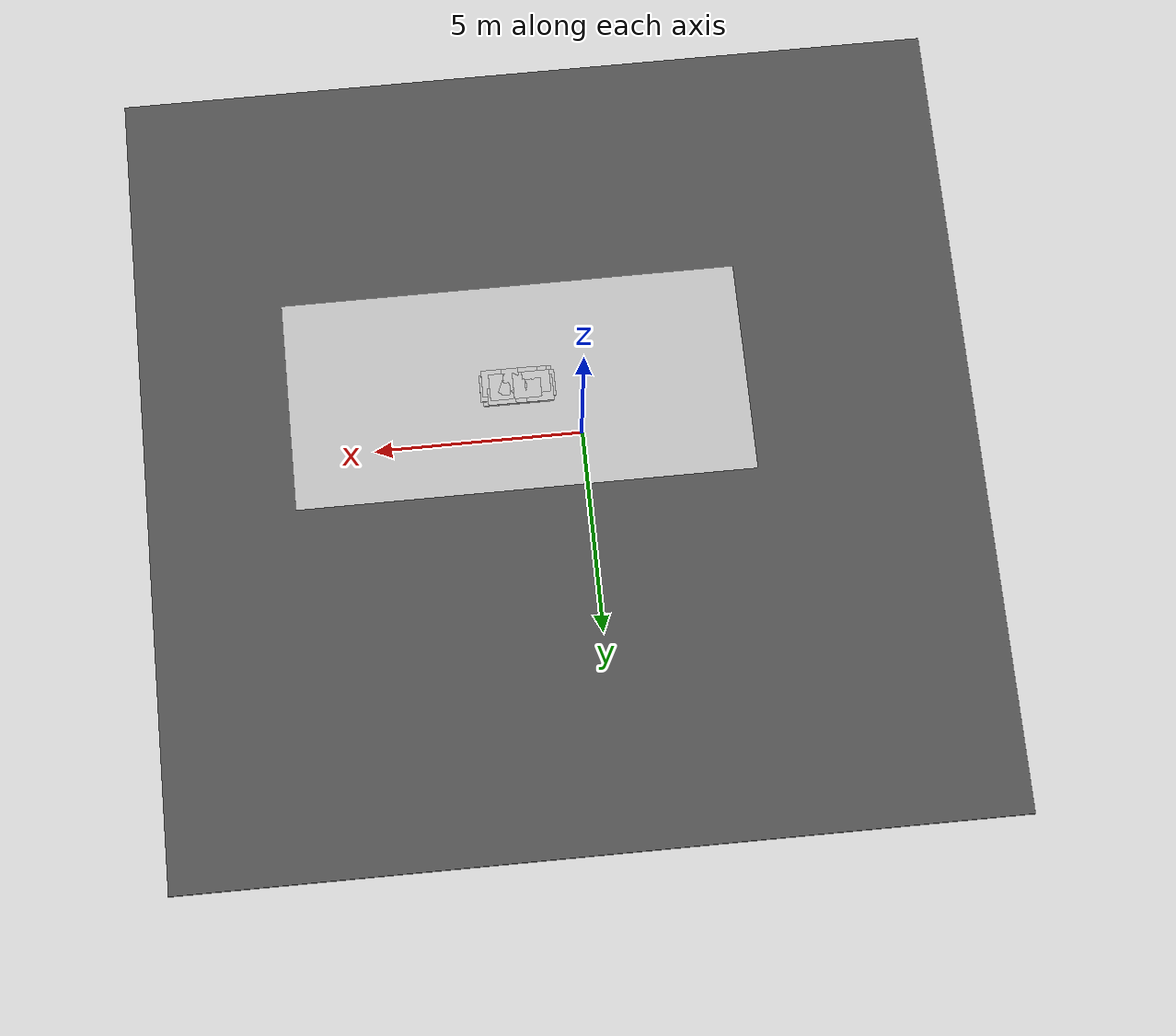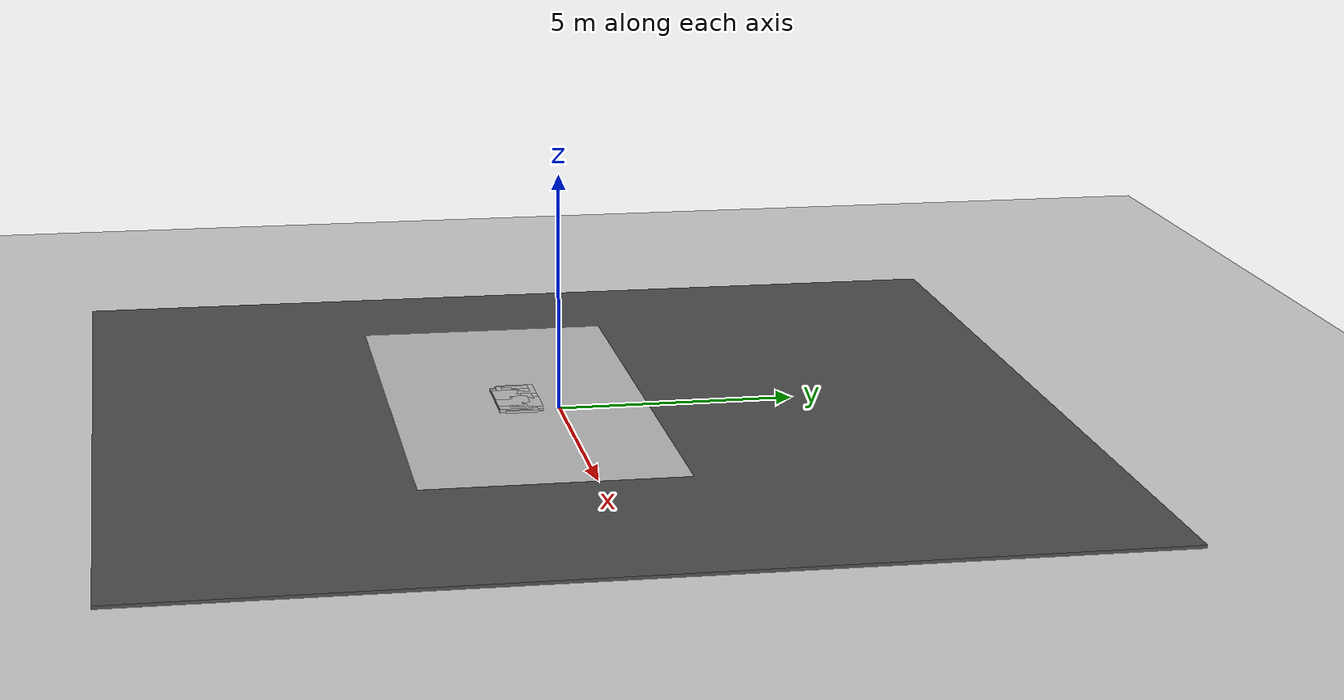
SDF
<sdf version="1.6">
 <world name="default">
  <model name="ground_plane">
   <static>1</static>
   <link name="link">
    <collision name="collision">
     <geometry><plane><normal>0 0 1</normal><size>100 100</size></plane></geometry>
     <surface><friction><ode><mu>100</mu><mu2>50</mu2></ode></friction></surface>
    </collision>
    <visual name="visual">
     <cast_shadows>0</cast_shadows>
     <geometry><plane><normal>0 0 1</normal><size>100 100</size></plane></geometry>
     <material>
      <script><uri>file://media/materials/scripts/gazebo.material</uri><name>Gazebo/Grey</name></script>
     </material>
    </visual>
   </link>
  </model>
  <model name="frc2016_roughterrain_0">
   <link name="link_clone_9">
    <pose>1.56756 -1.13992 -0.073164 0 -0 0</pose>
    <inertial>
     <inertia><ixx>nan</ixx><ixy>0</ixy><ixz>0</ixz><iyy>nan</iyy><iyz>0</iyz><izz>nan</izz></inertia>
     <mass>0</mass>
    </inertial>
    <visual name="row1_block9_md">
     <pose>-0.40005 0.1143 0.10968 0 -0 0</pose>
     <geometry><box><size>0.661913 0.666728 0.0508</size></box></geometry>
     <material><shader type="pixel"/></material>
    </visual>
    <visual name="row1_block3_md">
     <pose>0.28575 0.1143 0.10968 0 -0 0</pose>
     <geometry><box><size>0.661913 0.666728 0.0508</size></box></geometry>
     <material><shader type="pixel"/></material>
    </visual>
    <visual name="platform">
     <pose>0 0 0.08269 0 -0 0</pose>
     <geometry><box><size>10.9979 5.2227 0.003175</size></box></geometry>
     <material><shader type="pixel"/></material>
    </visual>
    <visual name="row1_block1_sm">
     <pose>0.51435 0.1143 0.09698 0 -0 0</pose>
     <geometry><box><size>0.661913 0.666728 0.0254</size></box></geometry>
     <material><shader type="pixel"/></material>
    </visual>
    <visual name="row1_block2_lg">
     <pose>0.40005 0.1143 0.12238 0 -0 0</pose>
     <geometry><box><size>0.661913 0.666728 0.0762</size></box></geometry>
     <material><shader type="pixel"/></material>
    </visual>
    <visual name="row1_block4_sm">
     <pose>0.17145 0.1143 0.09698 0 -0 0</pose>
     <geometry><box><size>0.661913 0.666728 0.0254</size></box></geometry>
     <material><shader type="pixel"/></material>
    </visual>
    <visual name="row1_block5_md">
     <pose>0.05715 0.1143 0.10968 0 -0 0</pose>
     <geometry><box><size>0.661913 0.666728 0.0508</size></box></geometry>
     <material><shader type="pixel"/></material>
    </visual>
    <visual name="row1_block6_lg">
     <pose>-0.05715 0.1143 0.12238 0 -0 0</pose>
     <geometry><box><size>0.661913 0.666728 0.0762</size></box></geometry>
     <material><shader type="pixel"/></material>
    </visual>
    <visual name="row1_block8_sm">
     <pose>-0.28575 0.1143 0.09698 0 -0 0</pose>
     <geometry><box><size>0.661913 0.666728 0.0254</size></box></geometry>
     <material><shader type="pixel"/></material>
    </visual>
    <visual name="row1_block7_sm">
     <pose>-0.17145 0.1143 0.09698 0 -0 0</pose>
     <geometry><box><size>0.661913 0.666728 0.0254</size></box></geometry>
     <material><shader type="pixel"/></material>
    </visual>
    <visual name="row1_block10_lg">
     <pose>-0.51435 0.1143 0.12238 0 -0 0</pose>
     <geometry><box><size>0.661913 0.666728 0.0762</size></box></geometry>
     <material><shader type="pixel"/></material>
    </visual>
    <visual name="row2_block1_md">
     <pose>0.5715 0 0.10968 0 -0 0</pose>
     <geometry><box><size>0.661913 0.666728 0.0508</size></box></geometry>
     <material><shader type="pixel"/></material>
    </visual>
    <visual name="row2_block2_sm">
     <pose>0.4572 0 0.09698 0 -0 0</pose>
     <geometry><box><size>0.661913 0.666728 0.0254</size></box></geometry>
     <material><shader type="pixel"/></material>
    </visual>
    <visual name="row2_block3_lg">
     <pose>0.3429 0 0.12238 0 -0 0</pose>
     <geometry><box><size>0.661913 0.666728 0.0762</size></box></geometry>
     <material><shader type="pixel"/></material>
    </visual>
    <visual name="row2_block4_md">
     <pose>0.2286 0 0.10968 0 -0 0</pose>
     <geometry><box><size>0.661913 0.666728 0.0508</size></box></geometry>
     <material><shader type="pixel"/></material>
    </visual>
    <visual name="row2_block5_lg">
     <pose>0.1143 0 0.12238 0 -0 0</pose>
     <geometry><box><size>0.661913 0.666728 0.0762</size></box></geometry>
     <material><shader type="pixel"/></material>
    </visual>
    <visual name="row2_block6_sm">
     <pose>0 0 0.09698 0 -0 0</pose>
     <geometry><box><size>0.661913 0.666728 0.0254</size></box></geometry>
     <material><shader type="pixel"/></material>
    </visual>
    <visual name="row2_block7_md">
     <pose>-0.1143 0 0.10968 0 -0 0</pose>
     <geometry><box><size>0.661913 0.666728 0.0508</size></box></geometry>
     <material><shader type="pixel"/></material>
    </visual>
    <visual name="row2_block8_lg">
     <pose>-0.2286 0 0.12238 0 -0 0</pose>
     <geometry><box><size>0.661913 0.666728 0.0762</size></box></geometry>
     <material><shader type="pixel"/></material>
    </visual>
    <visual name="row2_block9_sm">
     <pose>-0.3429 0 0.09698 0 -0 0</pose>
     <geometry><box><size>0.661913 0.666728 0.0254</size></box></geometry>
     <material><shader type="pixel"/></material>
    </visual>
    <visual name="row2_block10_lg">
     <pose>-0.4572 0 0.12238 0 -0 0</pose>
     <geometry><box><size>0.661913 0.666728 0.0762</size></box></geometry>
     <material><shader type="pixel"/></material>
    </visual>
    <visual name="row2_block11_md">
     <pose>-0.5715 0 0.10968 0 -0 0</pose>
     <geometry><box><size>0.661913 0.666728 0.0508</size></box></geometry>
     <material><shader type="pixel"/></material>
    </visual>
    <visual name="row3_block2_md">
     <pose>0.40005 -0.1143 0.10968 0 -0 0</pose>
     <geometry><box><size>0.661913 0.666728 0.0508</size></box></geometry>
     <material><shader type="pixel"/></material>
    </visual>
    <visual name="row3_block1_lg">
     <pose>0.51435 -0.1143 0.12238 0 -0 0</pose>
     <geometry><box><size>0.661913 0.666728 0.0762</size></box></geometry>
     <material><shader type="pixel"/></material>
    </visual>
    <visual name="row3_block3_lg">
     <pose>0.28575 -0.1143 0.12238 0 -0 0</pose>
     <geometry><box><size>0.661913 0.666728 0.0762</size></box></geometry>
     <material><shader type="pixel"/></material>
    </visual>
    <visual name="row3_block4_sm">
     <pose>0.17145 -0.1143 0.09698 0 -0 0</pose>
     <geometry><box><size>0.661913 0.666728 0.0254</size></box></geometry>
     <material><shader type="pixel"/></material>
    </visual>
    <visual name="row3_block5_md">
     <pose>0.05715 -0.1143 0.10968 0 -0 0</pose>
     <geometry><box><size>0.661913 0.666728 0.0508</size></box></geometry>
     <material><shader type="pixel"/></material>
    </visual>
    <visual name="row3_block6_md">
     <pose>-0.05715 -0.1143 0.10968 0 -0 0</pose>
     <geometry><box><size>0.661913 0.666728 0.0508</size></box></geometry>
     <material><shader type="pixel"/></material>
    </visual>
    <visual name="row3_block8_sm">
     <pose>-0.28575 -0.1143 0.09698 0 -0 0</pose>
     <geometry><box><size>0.661913 0.666728 0.0254</size></box></geometry>
     <material><shader type="pixel"/></material>
    </visual>
    <visual name="row3_block7_lg">
     <pose>-0.17145 -0.1143 0.12238 0 -0 0</pose>
     <geometry><box><size>0.661913 0.666728 0.0762</size></box></geometry>
     <material><shader type="pixel"/></material>
    </visual>
    <visual name="row3_block9_md">
     <pose>-0.40005 -0.1143 0.10968 0 -0 0</pose>
     <geometry><box><size>0.661913 0.666728 0.0508</size></box></geometry>
     <material><shader type="pixel"/></material>
    </visual>
    <visual name="row3_block10_sm">
     <pose>-0.51435 -0.1143 0.09698 0 -0 0</pose>
     <geometry><box><size>0.661913 0.666728 0.0254</size></box></geometry>
     <material><shader type="pixel"/></material>
    </visual>
    <collision name="row2_block5_lg_0">
     <pose>0.1143 0 0.12238 0 -0 0</pose>
     <geometry><box><size>0.661913 0.666728 0.0762</size></box></geometry>
     <surface>
      <friction>
       <ode><mu>1</mu><mu2>1</mu2><fdir1>0 0 0</fdir1><slip1>0</slip1><slip2>0</slip2></ode>
       <torsional>
        <coefficient>1</coefficient>
        <patch_radius>0</patch_radius>
        <surface_radius>0</surface_radius>
        <use_patch_radius>1</use_patch_radius>
        <ode><slip>0</slip></ode>
       </torsional>
      </friction>
      <bounce><restitution_coefficient>0</restitution_coefficient><threshold>1e+06</threshold></bounce>
      <contact>
       <collide_without_contact>0</collide_without_contact>
       <collide_without_contact_bitmask>1</collide_without_contact_bitmask>
       <collide_bitmask>1</collide_bitmask>
       <ode>
        <soft_cfm>0</soft_cfm>
        <soft_erp>0.2</soft_erp>
        <kp>1e+13</kp>
        <kd>1</kd>
        <max_vel>0.01</max_vel>
        <min_depth>0</min_depth>
       </ode>
       <bullet>
        <split_impulse>1</split_impulse>
        <split_impulse_penetration_threshold>-0.01</split_impulse_penetration_threshold>
        <soft_cfm>0</soft_cfm>
        <soft_erp>0.2</soft_erp>
        <kp>1e+13</kp>
        <kd>1</kd>
       </bullet>
      </contact>
     </surface>
    </collision>
    <collision name="platform_0">
     <pose>0 0 0.08269 0 -0 0</pose>
     <geometry><box><size>10.9979 5.2227 0.003175</size></box></geometry>
     <surface>
      <friction>
       <ode><mu>1</mu><mu2>1</mu2><fdir1>0 0 0</fdir1><slip1>0</slip1><slip2>0</slip2></ode>
       <torsional>
        <coefficient>1</coefficient>
        <patch_radius>0</patch_radius>
        <surface_radius>0</surface_radius>
        <use_patch_radius>1</use_patch_radius>
        <ode><slip>0</slip></ode>
       </torsional>
      </friction>
      <bounce><restitution_coefficient>0</restitution_coefficient><threshold>1e+06</threshold></bounce>
      <contact>
       <collide_without_contact>0</collide_without_contact>
       <collide_without_contact_bitmask>1</collide_without_contact_bitmask>
       <collide_bitmask>1</collide_bitmask>
       <ode>
        <soft_cfm>0</soft_cfm>
        <soft_erp>0.2</soft_erp>
        <kp>1e+13</kp>
        <kd>1</kd>
        <max_vel>0.01</max_vel>
        <min_depth>0</min_depth>
       </ode>
       <bullet>
        <split_impulse>1</split_impulse>
        <split_impulse_penetration_threshold>-0.01</split_impulse_penetration_threshold>
        <soft_cfm>0</soft_cfm>
        <soft_erp>0.2</soft_erp>
        <kp>1e+13</kp>
        <kd>1</kd>
       </bullet>
      </contact>
     </surface>
    </collision>
    <collision name="row1_block1_sm_0">
     <pose>0.51435 0.1143 0.09698 0 -0 0</pose>
     <geometry><box><size>0.661913 0.666728 0.0254</size></box></geometry>
     <surface>
      <friction>
       <ode><mu>1</mu><mu2>1</mu2><fdir1>0 0 0</fdir1><slip1>0</slip1><slip2>0</slip2></ode>
       <torsional>
        <coefficient>1</coefficient>
        <patch_radius>0</patch_radius>
        <surface_radius>0</surface_radius>
        <use_patch_radius>1</use_patch_radius>
        <ode><slip>0</slip></ode>
       </torsional>
      </friction>
      <bounce><restitution_coefficient>0</restitution_coefficient><threshold>1e+06</threshold></bounce>
      <contact>
       <collide_without_contact>0</collide_without_contact>
       <collide_without_contact_bitmask>1</collide_without_contact_bitmask>
       <collide_bitmask>1</collide_bitmask>
       <ode>
        <soft_cfm>0</soft_cfm>
        <soft_erp>0.2</soft_erp>
        <kp>1e+13</kp>
        <kd>1</kd>
        <max_vel>0.01</max_vel>
        <min_depth>0</min_depth>
       </ode>
       <bullet>
        <split_impulse>1</split_impulse>
        <split_impulse_penetration_threshold>-0.01</split_impulse_penetration_threshold>
        <soft_cfm>0</soft_cfm>
        <soft_erp>0.2</soft_erp>
        <kp>1e+13</kp>
        <kd>1</kd>
       </bullet>
      </contact>
     </surface>
    </collision>
    <collision name="row1_block3_md_0">
     <pose>0.28575 0.1143 0.10968 0 -0 0</pose>
     <geometry><box><size>0.661913 0.666728 0.0508</size></box></geometry>
     <surface>
      <friction>
       <ode><mu>1</mu><mu2>1</mu2><fdir1>0 0 0</fdir1><slip1>0</slip1><slip2>0</slip2></ode>
       <torsional>
        <coefficient>1</coefficient>
        <patch_radius>0</patch_radius>
        <surface_radius>0</surface_radius>
        <use_patch_radius>1</use_patch_radius>
        <ode><slip>0</slip></ode>
       </torsional>
      </friction>
      <bounce><restitution_coefficient>0</restitution_coefficient><threshold>1e+06</threshold></bounce>
      <contact>
       <collide_without_contact>0</collide_without_contact>
       <collide_without_contact_bitmask>1</collide_without_contact_bitmask>
       <collide_bitmask>1</collide_bitmask>
       <ode>
        <soft_cfm>0</soft_cfm>
        <soft_erp>0.2</soft_erp>
        <kp>1e+13</kp>
        <kd>1</kd>
        <max_vel>0.01</max_vel>
        <min_depth>0</min_depth>
       </ode>
       <bullet>
        <split_impulse>1</split_impulse>
        <split_impulse_penetration_threshold>-0.01</split_impulse_penetration_threshold>
        <soft_cfm>0</soft_cfm>
        <soft_erp>0.2</soft_erp>
        <kp>1e+13</kp>
        <kd>1</kd>
       </bullet>
      </contact>
     </surface>
    </collision>
    <collision name="row1_block4_sm_0">
     <pose>0.17145 0.1143 0.09698 0 -0 0</pose>
     <geometry><box><size>0.661913 0.666728 0.0254</size></box></geometry>
     <surface>
      <friction>
       <ode><mu>1</mu><mu2>1</mu2><fdir1>0 0 0</fdir1><slip1>0</slip1><slip2>0</slip2></ode>
       <torsional>
        <coefficient>1</coefficient>
        <patch_radius>0</patch_radius>
        <surface_radius>0</surface_radius>
        <use_patch_radius>1</use_patch_radius>
        <ode><slip>0</slip></ode>
       </torsional>
      </friction>
      <bounce><restitution_coefficient>0</restitution_coefficient><threshold>1e+06</threshold></bounce>
      <contact>
       <collide_without_contact>0</collide_without_contact>
       <collide_without_contact_bitmask>1</collide_without_contact_bitmask>
       <collide_bitmask>1</collide_bitmask>
       <ode>
        <soft_cfm>0</soft_cfm>
        <soft_erp>0.2</soft_erp>
        <kp>1e+13</kp>
        <kd>1</kd>
        <max_vel>0.01</max_vel>
        <min_depth>0</min_depth>
       </ode>
       <bullet>
        <split_impulse>1</split_impulse>
        <split_impulse_penetration_threshold>-0.01</split_impulse_penetration_threshold>
        <soft_cfm>0</soft_cfm>
        <soft_erp>0.2</soft_erp>
        <kp>1e+13</kp>
        <kd>1</kd>
       </bullet>
      </contact>
     </surface>
    </collision>
    <collision name="row1_block2_lg_0">
     <pose>0.40005 0.1143 0.12238 0 -0 0</pose>
     <geometry><box><size>0.661913 0.666728 0.0762</size></box></geometry>
     <surface>
      <friction>
       <ode><mu>1</mu><mu2>1</mu2><fdir1>0 0 0</fdir1><slip1>0</slip1><slip2>0</slip2></ode>
       <torsional>
        <coefficient>1</coefficient>
        <patch_radius>0</patch_radius>
        <surface_radius>0</surface_radius>
        <use_patch_radius>1</use_patch_radius>
        <ode><slip>0</slip></ode>
       </torsional>
      </friction>
      <bounce><restitution_coefficient>0</restitution_coefficient><threshold>1e+06</threshold></bounce>
      <contact>
       <collide_without_contact>0</collide_without_contact>
       <collide_without_contact_bitmask>1</collide_without_contact_bitmask>
       <collide_bitmask>1</collide_bitmask>
       <ode>
        <soft_cfm>0</soft_cfm>
        <soft_erp>0.2</soft_erp>
        <kp>1e+13</kp>
        <kd>1</kd>
        <max_vel>0.01</max_vel>
        <min_depth>0</min_depth>
       </ode>
       <bullet>
        <split_impulse>1</split_impulse>
        <split_impulse_penetration_threshold>-0.01</split_impulse_penetration_threshold>
        <soft_cfm>0</soft_cfm>
        <soft_erp>0.2</soft_erp>
        <kp>1e+13</kp>
        <kd>1</kd>
       </bullet>
      </contact>
     </surface>
    </collision>
    <collision name="row1_block5_md_0">
     <pose>0.05715 0.1143 0.10968 0 -0 0</pose>
     <geometry><box><size>0.661913 0.666728 0.0508</size></box></geometry>
     <surface>
      <friction>
       <ode><mu>1</mu><mu2>1</mu2><fdir1>0 0 0</fdir1><slip1>0</slip1><slip2>0</slip2></ode>
       <torsional>
        <coefficient>1</coefficient>
        <patch_radius>0</patch_radius>
        <surface_radius>0</surface_radius>
        <use_patch_radius>1</use_patch_radius>
        <ode><slip>0</slip></ode>
       </torsional>
      </friction>
      <bounce><restitution_coefficient>0</restitution_coefficient><threshold>1e+06</threshold></bounce>
      <contact>
       <collide_without_contact>0</collide_without_contact>
       <collide_without_contact_bitmask>1</collide_without_contact_bitmask>
       <collide_bitmask>1</collide_bitmask>
       <ode>
        <soft_cfm>0</soft_cfm>
        <soft_erp>0.2</soft_erp>
        <kp>1e+13</kp>
        <kd>1</kd>
        <max_vel>0.01</max_vel>
        <min_depth>0</min_depth>
       </ode>
       <bullet>
        <split_impulse>1</split_impulse>
        <split_impulse_penetration_threshold>-0.01</split_impulse_penetration_threshold>
        <soft_cfm>0</soft_cfm>
        <soft_erp>0.2</soft_erp>
        <kp>1e+13</kp>
        <kd>1</kd>
       </bullet>
      </contact>
     </surface>
    </collision>
    <collision name="row1_block6_lg_0">
     <pose>-0.05715 0.1143 0.12238 0 -0 0</pose>
     <geometry><box><size>0.661913 0.666728 0.0762</size></box></geometry>
     <surface>
      <friction>
       <ode><mu>1</mu><mu2>1</mu2><fdir1>0 0 0</fdir1><slip1>0</slip1><slip2>0</slip2></ode>
       <torsional>
        <coefficient>1</coefficient>
        <patch_radius>0</patch_radius>
        <surface_radius>0</surface_radius>
        <use_patch_radius>1</use_patch_radius>
        <ode><slip>0</slip></ode>
       </torsional>
      </friction>
      <bounce><restitution_coefficient>0</restitution_coefficient><threshold>1e+06</threshold></bounce>
      <contact>
       <collide_without_contact>0</collide_without_contact>
       <collide_without_contact_bitmask>1</collide_without_contact_bitmask>
       <collide_bitmask>1</collide_bitmask>
       <ode>
        <soft_cfm>0</soft_cfm>
        <soft_erp>0.2</soft_erp>
        <kp>1e+13</kp>
        <kd>1</kd>
        <max_vel>0.01</max_vel>
        <min_depth>0</min_depth>
       </ode>
       <bullet>
        <split_impulse>1</split_impulse>
        <split_impulse_penetration_threshold>-0.01</split_impulse_penetration_threshold>
        <soft_cfm>0</soft_cfm>
        <soft_erp>0.2</soft_erp>
        <kp>1e+13</kp>
        <kd>1</kd>
       </bullet>
      </contact>
     </surface>
    </collision>
    <collision name="row1_block7_sm_0">
     <pose>-0.17145 0.1143 0.09698 0 -0 0</pose>
     <geometry><box><size>0.661913 0.666728 0.0254</size></box></geometry>
     <surface>
      <friction>
       <ode><mu>1</mu><mu2>1</mu2><fdir1>0 0 0</fdir1><slip1>0</slip1><slip2>0</slip2></ode>
       <torsional>
        <coefficient>1</coefficient>
        <patch_radius>0</patch_radius>
        <surface_radius>0</surface_radius>
        <use_patch_radius>1</use_patch_radius>
        <ode><slip>0</slip></ode>
       </torsional>
      </friction>
      <bounce><restitution_coefficient>0</restitution_coefficient><threshold>1e+06</threshold></bounce>
      <contact>
       <collide_without_contact>0</collide_without_contact>
       <collide_without_contact_bitmask>1</collide_without_contact_bitmask>
       <collide_bitmask>1</collide_bitmask>
       <ode>
        <soft_cfm>0</soft_cfm>
        <soft_erp>0.2</soft_erp>
        <kp>1e+13</kp>
        <kd>1</kd>
        <max_vel>0.01</max_vel>
        <min_depth>0</min_depth>
       </ode>
       <bullet>
        <split_impulse>1</split_impulse>
        <split_impulse_penetration_threshold>-0.01</split_impulse_penetration_threshold>
        <soft_cfm>0</soft_cfm>
        <soft_erp>0.2</soft_erp>
        <kp>1e+13</kp>
        <kd>1</kd>
       </bullet>
      </contact>
     </surface>
    </collision>
    <collision name="row1_block8_sm_0">
     <pose>-0.28575 0.1143 0.09698 0 -0 0</pose>
     <geometry><box><size>0.661913 0.666728 0.0254</size></box></geometry>
     <surface>
      <friction>
       <ode><mu>1</mu><mu2>1</mu2><fdir1>0 0 0</fdir1><slip1>0</slip1><slip2>0</slip2></ode>
       <torsional>
        <coefficient>1</coefficient>
        <patch_radius>0</patch_radius>
        <surface_radius>0</surface_radius>
        <use_patch_radius>1</use_patch_radius>
        <ode><slip>0</slip></ode>
       </torsional>
      </friction>
      <bounce><restitution_coefficient>0</restitution_coefficient><threshold>1e+06</threshold></bounce>
      <contact>
       <collide_without_contact>0</collide_without_contact>
       <collide_without_contact_bitmask>1</collide_without_contact_bitmask>
       <collide_bitmask>1</collide_bitmask>
       <ode>
        <soft_cfm>0</soft_cfm>
        <soft_erp>0.2</soft_erp>
        <kp>1e+13</kp>
        <kd>1</kd>
        <max_vel>0.01</max_vel>
        <min_depth>0</min_depth>
       </ode>
       <bullet>
        <split_impulse>1</split_impulse>
        <split_impulse_penetration_threshold>-0.01</split_impulse_penetration_threshold>
        <soft_cfm>0</soft_cfm>
        <soft_erp>0.2</soft_erp>
        <kp>1e+13</kp>
        <kd>1</kd>
       </bullet>
      </contact>
     </surface>
    </collision>
    <collision name="row1_block10_lg_0">
     <pose>-0.51435 0.1143 0.12238 0 -0 0</pose>
     <geometry><box><size>0.661913 0.666728 0.0762</size></box></geometry>
     <surface>
      <friction>
       <ode><mu>1</mu><mu2>1</mu2><fdir1>0 0 0</fdir1><slip1>0</slip1><slip2>0</slip2></ode>
       <torsional>
        <coefficient>1</coefficient>
        <patch_radius>0</patch_radius>
        <surface_radius>0</surface_radius>
        <use_patch_radius>1</use_patch_radius>
        <ode><slip>0</slip></ode>
       </torsional>
      </friction>
      <bounce><restitution_coefficient>0</restitution_coefficient><threshold>1e+06</threshold></bounce>
      <contact>
       <collide_without_contact>0</collide_without_contact>
       <collide_without_contact_bitmask>1</collide_without_contact_bitmask>
       <collide_bitmask>1</collide_bitmask>
       <ode>
        <soft_cfm>0</soft_cfm>
        <soft_erp>0.2</soft_erp>
        <kp>1e+13</kp>
        <kd>1</kd>
        <max_vel>0.01</max_vel>
        <min_depth>0</min_depth>
       </ode>
       <bullet>
        <split_impulse>1</split_impulse>
        <split_impulse_penetration_threshold>-0.01</split_impulse_penetration_threshold>
        <soft_cfm>0</soft_cfm>
        <soft_erp>0.2</soft_erp>
        <kp>1e+13</kp>
        <kd>1</kd>
       </bullet>
      </contact>
     </surface>
    </collision>
    <collision name="row1_block9_md_0">
     <pose>-0.40005 0.1143 0.10968 0 -0 0</pose>
     <geometry><box><size>0.661913 0.666728 0.0508</size></box></geometry>
     <surface>
      <friction>
       <ode><mu>1</mu><mu2>1</mu2><fdir1>0 0 0</fdir1><slip1>0</slip1><slip2>0</slip2></ode>
       <torsional>
        <coefficient>1</coefficient>
        <patch_radius>0</patch_radius>
        <surface_radius>0</surface_radius>
        <use_patch_radius>1</use_patch_radius>
        <ode><slip>0</slip></ode>
       </torsional>
      </friction>
      <bounce><restitution_coefficient>0</restitution_coefficient><threshold>1e+06</threshold></bounce>
      <contact>
       <collide_without_contact>0</collide_without_contact>
       <collide_without_contact_bitmask>1</collide_without_contact_bitmask>
       <collide_bitmask>1</collide_bitmask>
       <ode>
        <soft_cfm>0</soft_cfm>
        <soft_erp>0.2</soft_erp>
        <kp>1e+13</kp>
        <kd>1</kd>
        <max_vel>0.01</max_vel>
        <min_depth>0</min_depth>
       </ode>
       <bullet>
        <split_impulse>1</split_impulse>
        <split_impulse_penetration_threshold>-0.01</split_impulse_penetration_threshold>
        <soft_cfm>0</soft_cfm>
        <soft_erp>0.2</soft_erp>
        <kp>1e+13</kp>
        <kd>1</kd>
       </bullet>
      </contact>
     </surface>
    </collision>
    <collision name="row2_block1_md_0">
     <pose>0.5715 0 0.10968 0 -0 0</pose>
     <geometry><box><size>0.661913 0.666728 0.0508</size></box></geometry>
     <surface>
      <friction>
       <ode><mu>1</mu><mu2>1</mu2><fdir1>0 0 0</fdir1><slip1>0</slip1><slip2>0</slip2></ode>
       <torsional>
        <coefficient>1</coefficient>
        <patch_radius>0</patch_radius>
        <surface_radius>0</surface_radius>
        <use_patch_radius>1</use_patch_radius>
        <ode><slip>0</slip></ode>
       </torsional>
      </friction>
      <bounce><restitution_coefficient>0</restitution_coefficient><threshold>1e+06</threshold></bounce>
      <contact>
       <collide_without_contact>0</collide_without_contact>
       <collide_without_contact_bitmask>1</collide_without_contact_bitmask>
       <collide_bitmask>1</collide_bitmask>
       <ode>
        <soft_cfm>0</soft_cfm>
        <soft_erp>0.2</soft_erp>
        <kp>1e+13</kp>
        <kd>1</kd>
        <max_vel>0.01</max_vel>
        <min_depth>0</min_depth>
       </ode>
       <bullet>
        <split_impulse>1</split_impulse>
        <split_impulse_penetration_threshold>-0.01</split_impulse_penetration_threshold>
        <soft_cfm>0</soft_cfm>
        <soft_erp>0.2</soft_erp>
        <kp>1e+13</kp>
        <kd>1</kd>
       </bullet>
      </contact>
     </surface>
    </collision>
    <collision name="row2_block2_sm_0">
     <pose>0.4572 0 0.09698 0 -0 0</pose>
     <geometry><box><size>0.661913 0.666728 0.0254</size></box></geometry>
     <surface>
      <friction>
       <ode><mu>1</mu><mu2>1</mu2><fdir1>0 0 0</fdir1><slip1>0</slip1><slip2>0</slip2></ode>
       <torsional>
        <coefficient>1</coefficient>
        <patch_radius>0</patch_radius>
        <surface_radius>0</surface_radius>
        <use_patch_radius>1</use_patch_radius>
        <ode><slip>0</slip></ode>
       </torsional>
      </friction>
      <bounce><restitution_coefficient>0</restitution_coefficient><threshold>1e+06</threshold></bounce>
      <contact>
       <collide_without_contact>0</collide_without_contact>
       <collide_without_contact_bitmask>1</collide_without_contact_bitmask>
       <collide_bitmask>1</collide_bitmask>
       <ode>
        <soft_cfm>0</soft_cfm>
        <soft_erp>0.2</soft_erp>
        <kp>1e+13</kp>
        <kd>1</kd>
        <max_vel>0.01</max_vel>
        <min_depth>0</min_depth>
       </ode>
       <bullet>
        <split_impulse>1</split_impulse>
        <split_impulse_penetration_threshold>-0.01</split_impulse_penetration_threshold>
        <soft_cfm>0</soft_cfm>
        <soft_erp>0.2</soft_erp>
        <kp>1e+13</kp>
        <kd>1</kd>
       </bullet>
      </contact>
     </surface>
    </collision>
    <collision name="row2_block4_md_0">
     <pose>0.2286 0 0.10968 0 -0 0</pose>
     <geometry><box><size>0.661913 0.666728 0.0508</size></box></geometry>
     <surface>
      <friction>
       <ode><mu>1</mu><mu2>1</mu2><fdir1>0 0 0</fdir1><slip1>0</slip1><slip2>0</slip2></ode>
       <torsional>
        <coefficient>1</coefficient>
        <patch_radius>0</patch_radius>
        <surface_radius>0</surface_radius>
        <use_patch_radius>1</use_patch_radius>
        <ode><slip>0</slip></ode>
       </torsional>
      </friction>
      <bounce><restitution_coefficient>0</restitution_coefficient><threshold>1e+06</threshold></bounce>
      <contact>
       <collide_without_contact>0</collide_without_contact>
       <collide_without_contact_bitmask>1</collide_without_contact_bitmask>
       <collide_bitmask>1</collide_bitmask>
       <ode>
        <soft_cfm>0</soft_cfm>
        <soft_erp>0.2</soft_erp>
        <kp>1e+13</kp>
        <kd>1</kd>
        <max_vel>0.01</max_vel>
        <min_depth>0</min_depth>
       </ode>
       <bullet>
        <split_impulse>1</split_impulse>
        <split_impulse_penetration_threshold>-0.01</split_impulse_penetration_threshold>
        <soft_cfm>0</soft_cfm>
        <soft_erp>0.2</soft_erp>
        <kp>1e+13</kp>
        <kd>1</kd>
       </bullet>
      </contact>
     </surface>
    </collision>
    <collision name="row2_block3_lg_0">
     <pose>0.3429 0 0.12238 0 -0 0</pose>
     <geometry><box><size>0.661913 0.666728 0.0762</size></box></geometry>
     <surface>
      <friction>
       <ode><mu>1</mu><mu2>1</mu2><fdir1>0 0 0</fdir1><slip1>0</slip1><slip2>0</slip2></ode>
       <torsional>
        <coefficient>1</coefficient>
        <patch_radius>0</patch_radius>
        <surface_radius>0</surface_radius>
        <use_patch_radius>1</use_patch_radius>
        <ode><slip>0</slip></ode>
       </torsional>
      </friction>
      <bounce><restitution_coefficient>0</restitution_coefficient><threshold>1e+06</threshold></bounce>
      <contact>
       <collide_without_contact>0</collide_without_contact>
       <collide_without_contact_bitmask>1</collide_without_contact_bitmask>
       <collide_bitmask>1</collide_bitmask>
       <ode>
        <soft_cfm>0</soft_cfm>
        <soft_erp>0.2</soft_erp>
        <kp>1e+13</kp>
        <kd>1</kd>
        <max_vel>0.01</max_vel>
        <min_depth>0</min_depth>
       </ode>
       <bullet>
        <split_impulse>1</split_impulse>
        <split_impulse_penetration_threshold>-0.01</split_impulse_penetration_threshold>
        <soft_cfm>0</soft_cfm>
        <soft_erp>0.2</soft_erp>
        <kp>1e+13</kp>
        <kd>1</kd>
       </bullet>
      </contact>
     </surface>
    </collision>
    <collision name="row2_block6_sm_0">
     <pose>0 0 0.09698 0 -0 0</pose>
     <geometry><box><size>0.661913 0.666728 0.0254</size></box></geometry>
     <surface>
      <friction>
       <ode><mu>1</mu><mu2>1</mu2><fdir1>0 0 0</fdir1><slip1>0</slip1><slip2>0</slip2></ode>
       <torsional>
        <coefficient>1</coefficient>
        <patch_radius>0</patch_radius>
        <surface_radius>0</surface_radius>
        <use_patch_radius>1</use_patch_radius>
        <ode><slip>0</slip></ode>
       </torsional>
      </friction>
      <bounce><restitution_coefficient>0</restitution_coefficient><threshold>1e+06</threshold></bounce>
      <contact>
       <collide_without_contact>0</collide_without_contact>
       <collide_without_contact_bitmask>1</collide_without_contact_bitmask>
       <collide_bitmask>1</collide_bitmask>
       <ode>
        <soft_cfm>0</soft_cfm>
        <soft_erp>0.2</soft_erp>
        <kp>1e+13</kp>
        <kd>1</kd>
        <max_vel>0.01</max_vel>
        <min_depth>0</min_depth>
       </ode>
       <bullet>
        <split_impulse>1</split_impulse>
        <split_impulse_penetration_threshold>-0.01</split_impulse_penetration_threshold>
        <soft_cfm>0</soft_cfm>
        <soft_erp>0.2</soft_erp>
        <kp>1e+13</kp>
        <kd>1</kd>
       </bullet>
      </contact>
     </surface>
    </collision>
    <collision name="row2_block10_lg_0">
     <pose>-0.4572 0 0.12238 0 -0 0</pose>
     <geometry><box><size>0.661913 0.666728 0.0762</size></box></geometry>
     <surface>
      <friction>
       <ode><mu>1</mu><mu2>1</mu2><fdir1>0 0 0</fdir1><slip1>0</slip1><slip2>0</slip2></ode>
       <torsional>
        <coefficient>1</coefficient>
        <patch_radius>0</patch_radius>
        <surface_radius>0</surface_radius>
        <use_patch_radius>1</use_patch_radius>
        <ode><slip>0</slip></ode>
       </torsional>
      </friction>
      <bounce><restitution_coefficient>0</restitution_coefficient><threshold>1e+06</threshold></bounce>
      <contact>
       <collide_without_contact>0</collide_without_contact>
       <collide_without_contact_bitmask>1</collide_without_contact_bitmask>
       <collide_bitmask>1</collide_bitmask>
       <ode>
        <soft_cfm>0</soft_cfm>
        <soft_erp>0.2</soft_erp>
        <kp>1e+13</kp>
        <kd>1</kd>
        <max_vel>0.01</max_vel>
        <min_depth>0</min_depth>
       </ode>
       <bullet>
        <split_impulse>1</split_impulse>
        <split_impulse_penetration_threshold>-0.01</split_impulse_penetration_threshold>
        <soft_cfm>0</soft_cfm>
        <soft_erp>0.2</soft_erp>
        <kp>1e+13</kp>
        <kd>1</kd>
       </bullet>
      </contact>
     </surface>
    </collision>
    <collision name="row2_block7_md_0">
     <pose>-0.1143 0 0.10968 0 -0 0</pose>
     <geometry><box><size>0.661913 0.666728 0.0508</size></box></geometry>
     <surface>
      <friction>
       <ode><mu>1</mu><mu2>1</mu2><fdir1>0 0 0</fdir1><slip1>0</slip1><slip2>0</slip2></ode>
       <torsional>
        <coefficient>1</coefficient>
        <patch_radius>0</patch_radius>
        <surface_radius>0</surface_radius>
        <use_patch_radius>1</use_patch_radius>
        <ode><slip>0</slip></ode>
       </torsional>
      </friction>
      <bounce><restitution_coefficient>0</restitution_coefficient><threshold>1e+06</threshold></bounce>
      <contact>
       <collide_without_contact>0</collide_without_contact>
       <collide_without_contact_bitmask>1</collide_without_contact_bitmask>
       <collide_bitmask>1</collide_bitmask>
       <ode>
        <soft_cfm>0</soft_cfm>
        <soft_erp>0.2</soft_erp>
        <kp>1e+13</kp>
        <kd>1</kd>
        <max_vel>0.01</max_vel>
        <min_depth>0</min_depth>
       </ode>
       <bullet>
        <split_impulse>1</split_impulse>
        <split_impulse_penetration_threshold>-0.01</split_impulse_penetration_threshold>
        <soft_cfm>0</soft_cfm>
        <soft_erp>0.2</soft_erp>
        <kp>1e+13</kp>
        <kd>1</kd>
       </bullet>
      </contact>
     </surface>
    </collision>
    <collision name="row2_block8_lg_0">
     <pose>-0.2286 0 0.12238 0 -0 0</pose>
     <geometry><box><size>0.661913 0.666728 0.0762</size></box></geometry>
     <surface>
      <friction>
       <ode><mu>1</mu><mu2>1</mu2><fdir1>0 0 0</fdir1><slip1>0</slip1><slip2>0</slip2></ode>
       <torsional>
        <coefficient>1</coefficient>
        <patch_radius>0</patch_radius>
        <surface_radius>0</surface_radius>
        <use_patch_radius>1</use_patch_radius>
        <ode><slip>0</slip></ode>
       </torsional>
      </friction>
      <bounce><restitution_coefficient>0</restitution_coefficient><threshold>1e+06</threshold></bounce>
      <contact>
       <collide_without_contact>0</collide_without_contact>
       <collide_without_contact_bitmask>1</collide_without_contact_bitmask>
       <collide_bitmask>1</collide_bitmask>
       <ode>
        <soft_cfm>0</soft_cfm>
        <soft_erp>0.2</soft_erp>
        <kp>1e+13</kp>
        <kd>1</kd>
        <max_vel>0.01</max_vel>
        <min_depth>0</min_depth>
       </ode>
       <bullet>
        <split_impulse>1</split_impulse>
        <split_impulse_penetration_threshold>-0.01</split_impulse_penetration_threshold>
        <soft_cfm>0</soft_cfm>
        <soft_erp>0.2</soft_erp>
        <kp>1e+13</kp>
        <kd>1</kd>
       </bullet>
      </contact>
     </surface>
    </collision>
    <collision name="row2_block11_md_0">
     <pose>-0.5715 0 0.10968 0 -0 0</pose>
     <geometry><box><size>0.661913 0.666728 0.0508</size></box></geometry>
     <surface>
      <friction>
       <ode><mu>1</mu><mu2>1</mu2><fdir1>0 0 0</fdir1><slip1>0</slip1><slip2>0</slip2></ode>
       <torsional>
        <coefficient>1</coefficient>
        <patch_radius>0</patch_radius>
        <surface_radius>0</surface_radius>
        <use_patch_radius>1</use_patch_radius>
        <ode><slip>0</slip></ode>
       </torsional>
      </friction>
      <bounce><restitution_coefficient>0</restitution_coefficient><threshold>1e+06</threshold></bounce>
      <contact>
       <collide_without_contact>0</collide_without_contact>
       <collide_without_contact_bitmask>1</collide_without_contact_bitmask>
       <collide_bitmask>1</collide_bitmask>
       <ode>
        <soft_cfm>0</soft_cfm>
        <soft_erp>0.2</soft_erp>
        <kp>1e+13</kp>
        <kd>1</kd>
        <max_vel>0.01</max_vel>
        <min_depth>0</min_depth>
       </ode>
       <bullet>
        <split_impulse>1</split_impulse>
        <split_impulse_penetration_threshold>-0.01</split_impulse_penetration_threshold>
        <soft_cfm>0</soft_cfm>
        <soft_erp>0.2</soft_erp>
        <kp>1e+13</kp>
        <kd>1</kd>
       </bullet>
      </contact>
     </surface>
    </collision>
    <collision name="row2_block9_sm_0">
     <pose>-0.3429 0 0.09698 0 -0 0</pose>
     <geometry><box><size>0.661913 0.666728 0.0254</size></box></geometry>
     <surface>
      <friction>
       <ode><mu>1</mu><mu2>1</mu2><fdir1>0 0 0</fdir1><slip1>0</slip1><slip2>0</slip2></ode>
       <torsional>
        <coefficient>1</coefficient>
        <patch_radius>0</patch_radius>
        <surface_radius>0</surface_radius>
        <use_patch_radius>1</use_patch_radius>
        <ode><slip>0</slip></ode>
       </torsional>
      </friction>
      <bounce><restitution_coefficient>0</restitution_coefficient><threshold>1e+06</threshold></bounce>
      <contact>
       <collide_without_contact>0</collide_without_contact>
       <collide_without_contact_bitmask>1</collide_without_contact_bitmask>
       <collide_bitmask>1</collide_bitmask>
       <ode>
        <soft_cfm>0</soft_cfm>
        <soft_erp>0.2</soft_erp>
        <kp>1e+13</kp>
        <kd>1</kd>
        <max_vel>0.01</max_vel>
        <min_depth>0</min_depth>
       </ode>
       <bullet>
        <split_impulse>1</split_impulse>
        <split_impulse_penetration_threshold>-0.01</split_impulse_penetration_threshold>
        <soft_cfm>0</soft_cfm>
        <soft_erp>0.2</soft_erp>
        <kp>1e+13</kp>
        <kd>1</kd>
       </bullet>
      </contact>
     </surface>
    </collision>
    <collision name="row3_block2_md_0">
     <pose>0.40005 -0.1143 0.10968 0 -0 0</pose>
     <geometry><box><size>0.661913 0.666728 0.0508</size></box></geometry>
     <surface>
      <friction>
       <ode><mu>1</mu><mu2>1</mu2><fdir1>0 0 0</fdir1><slip1>0</slip1><slip2>0</slip2></ode>
       <torsional>
        <coefficient>1</coefficient>
        <patch_radius>0</patch_radius>
        <surface_radius>0</surface_radius>
        <use_patch_radius>1</use_patch_radius>
        <ode><slip>0</slip></ode>
       </torsional>
      </friction>
      <bounce><restitution_coefficient>0</restitution_coefficient><threshold>1e+06</threshold></bounce>
      <contact>
       <collide_without_contact>0</collide_without_contact>
       <collide_without_contact_bitmask>1</collide_without_contact_bitmask>
       <collide_bitmask>1</collide_bitmask>
       <ode>
        <soft_cfm>0</soft_cfm>
        <soft_erp>0.2</soft_erp>
        <kp>1e+13</kp>
        <kd>1</kd>
        <max_vel>0.01</max_vel>
        <min_depth>0</min_depth>
       </ode>
       <bullet>
        <split_impulse>1</split_impulse>
        <split_impulse_penetration_threshold>-0.01</split_impulse_penetration_threshold>
        <soft_cfm>0</soft_cfm>
        <soft_erp>0.2</soft_erp>
        <kp>1e+13</kp>
        <kd>1</kd>
       </bullet>
      </contact>
     </surface>
    </collision>
    <collision name="row3_block3_lg_0">
     <pose>0.28575 -0.1143 0.12238 0 -0 0</pose>
     <geometry><box><size>0.661913 0.666728 0.0762</size></box></geometry>
     <surface>
      <friction>
       <ode><mu>1</mu><mu2>1</mu2><fdir1>0 0 0</fdir1><slip1>0</slip1><slip2>0</slip2></ode>
       <torsional>
        <coefficient>1</coefficient>
        <patch_radius>0</patch_radius>
        <surface_radius>0</surface_radius>
        <use_patch_radius>1</use_patch_radius>
        <ode><slip>0</slip></ode>
       </torsional>
      </friction>
      <bounce><restitution_coefficient>0</restitution_coefficient><threshold>1e+06</threshold></bounce>
      <contact>
       <collide_without_contact>0</collide_without_contact>
       <collide_without_contact_bitmask>1</collide_without_contact_bitmask>
       <collide_bitmask>1</collide_bitmask>
       <ode>
        <soft_cfm>0</soft_cfm>
        <soft_erp>0.2</soft_erp>
        <kp>1e+13</kp>
        <kd>1</kd>
        <max_vel>0.01</max_vel>
        <min_depth>0</min_depth>
       </ode>
       <bullet>
        <split_impulse>1</split_impulse>
        <split_impulse_penetration_threshold>-0.01</split_impulse_penetration_threshold>
        <soft_cfm>0</soft_cfm>
        <soft_erp>0.2</soft_erp>
        <kp>1e+13</kp>
        <kd>1</kd>
       </bullet>
      </contact>
     </surface>
    </collision>
    <collision name="row3_block1_lg_0">
     <pose>0.51435 -0.1143 0.12238 0 -0 0</pose>
     <geometry><box><size>0.661913 0.666728 0.0762</size></box></geometry>
     <surface>
      <friction>
       <ode><mu>1</mu><mu2>1</mu2><fdir1>0 0 0</fdir1><slip1>0</slip1><slip2>0</slip2></ode>
       <torsional>
        <coefficient>1</coefficient>
        <patch_radius>0</patch_radius>
        <surface_radius>0</surface_radius>
        <use_patch_radius>1</use_patch_radius>
        <ode><slip>0</slip></ode>
       </torsional>
      </friction>
      <bounce><restitution_coefficient>0</restitution_coefficient><threshold>1e+06</threshold></bounce>
      <contact>
       <collide_without_contact>0</collide_without_contact>
       <collide_without_contact_bitmask>1</collide_without_contact_bitmask>
       <collide_bitmask>1</collide_bitmask>
       <ode>
        <soft_cfm>0</soft_cfm>
        <soft_erp>0.2</soft_erp>
        <kp>1e+13</kp>
        <kd>1</kd>
        <max_vel>0.01</max_vel>
        <min_depth>0</min_depth>
       </ode>
       <bullet>
        <split_impulse>1</split_impulse>
        <split_impulse_penetration_threshold>-0.01</split_impulse_penetration_threshold>
        <soft_cfm>0</soft_cfm>
        <soft_erp>0.2</soft_erp>
        <kp>1e+13</kp>
        <kd>1</kd>
       </bullet>
      </contact>
     </surface>
    </collision>
    <collision name="row3_block4_sm_0">
     <pose>0.17145 -0.1143 0.09698 0 -0 0</pose>
     <geometry><box><size>0.661913 0.666728 0.0254</size></box></geometry>
     <surface>
      <friction>
       <ode><mu>1</mu><mu2>1</mu2><fdir1>0 0 0</fdir1><slip1>0</slip1><slip2>0</slip2></ode>
       <torsional>
        <coefficient>1</coefficient>
        <patch_radius>0</patch_radius>
        <surface_radius>0</surface_radius>
        <use_patch_radius>1</use_patch_radius>
        <ode><slip>0</slip></ode>
       </torsional>
      </friction>
      <bounce><restitution_coefficient>0</restitution_coefficient><threshold>1e+06</threshold></bounce>
      <contact>
       <collide_without_contact>0</collide_without_contact>
       <collide_without_contact_bitmask>1</collide_without_contact_bitmask>
       <collide_bitmask>1</collide_bitmask>
       <ode>
        <soft_cfm>0</soft_cfm>
        <soft_erp>0.2</soft_erp>
        <kp>1e+13</kp>
        <kd>1</kd>
        <max_vel>0.01</max_vel>
        <min_depth>0</min_depth>
       </ode>
       <bullet>
        <split_impulse>1</split_impulse>
        <split_impulse_penetration_threshold>-0.01</split_impulse_penetration_threshold>
        <soft_cfm>0</soft_cfm>
        <soft_erp>0.2</soft_erp>
        <kp>1e+13</kp>
        <kd>1</kd>
       </bullet>
      </contact>
     </surface>
    </collision>
    <collision name="row3_block5_md_0">
     <pose>0.05715 -0.1143 0.10968 0 -0 0</pose>
     <geometry><box><size>0.661913 0.666728 0.0508</size></box></geometry>
     <surface>
      <friction>
       <ode><mu>1</mu><mu2>1</mu2><fdir1>0 0 0</fdir1><slip1>0</slip1><slip2>0</slip2></ode>
       <torsional>
        <coefficient>1</coefficient>
        <patch_radius>0</patch_radius>
        <surface_radius>0</surface_radius>
        <use_patch_radius>1</use_patch_radius>
        <ode><slip>0</slip></ode>
       </torsional>
      </friction>
      <bounce><restitution_coefficient>0</restitution_coefficient><threshold>1e+06</threshold></bounce>
      <contact>
       <collide_without_contact>0</collide_without_contact>
       <collide_without_contact_bitmask>1</collide_without_contact_bitmask>
       <collide_bitmask>1</collide_bitmask>
       <ode>
        <soft_cfm>0</soft_cfm>
        <soft_erp>0.2</soft_erp>
        <kp>1e+13</kp>
        <kd>1</kd>
        <max_vel>0.01</max_vel>
        <min_depth>0</min_depth>
       </ode>
       <bullet>
        <split_impulse>1</split_impulse>
        <split_impulse_penetration_threshold>-0.01</split_impulse_penetration_threshold>
        <soft_cfm>0</soft_cfm>
        <soft_erp>0.2</soft_erp>
        <kp>1e+13</kp>
        <kd>1</kd>
       </bullet>
      </contact>
     </surface>
    </collision>
    <collision name="row3_block7_lg_0">
     <pose>-0.17145 -0.1143 0.12238 0 -0 0</pose>
     <geometry><box><size>0.661913 0.666728 0.0762</size></box></geometry>
     <surface>
      <friction>
       <ode><mu>1</mu><mu2>1</mu2><fdir1>0 0 0</fdir1><slip1>0</slip1><slip2>0</slip2></ode>
       <torsional>
        <coefficient>1</coefficient>
        <patch_radius>0</patch_radius>
        <surface_radius>0</surface_radius>
        <use_patch_radius>1</use_patch_radius>
        <ode><slip>0</slip></ode>
       </torsional>
      </friction>
      <bounce><restitution_coefficient>0</restitution_coefficient><threshold>1e+06</threshold></bounce>
      <contact>
       <collide_without_contact>0</collide_without_contact>
       <collide_without_contact_bitmask>1</collide_without_contact_bitmask>
       <collide_bitmask>1</collide_bitmask>
       <ode>
        <soft_cfm>0</soft_cfm>
        <soft_erp>0.2</soft_erp>
        <kp>1e+13</kp>
        <kd>1</kd>
        <max_vel>0.01</max_vel>
        <min_depth>0</min_depth>
       </ode>
       <bullet>
        <split_impulse>1</split_impulse>
        <split_impulse_penetration_threshold>-0.01</split_impulse_penetration_threshold>
        <soft_cfm>0</soft_cfm>
        <soft_erp>0.2</soft_erp>
        <kp>1e+13</kp>
        <kd>1</kd>
       </bullet>
      </contact>
     </surface>
    </collision>
    <collision name="row3_block8_sm_0">
     <pose>-0.28575 -0.1143 0.09698 0 -0 0</pose>
     <geometry><box><size>0.661913 0.666728 0.0254</size></box></geometry>
     <surface>
      <friction>
       <ode><mu>1</mu><mu2>1</mu2><fdir1>0 0 0</fdir1><slip1>0</slip1><slip2>0</slip2></ode>
       <torsional>
        <coefficient>1</coefficient>
        <patch_radius>0</patch_radius>
        <surface_radius>0</surface_radius>
        <use_patch_radius>1</use_patch_radius>
        <ode><slip>0</slip></ode>
       </torsional>
      </friction>
      <bounce><restitution_coefficient>0</restitution_coefficient><threshold>1e+06</threshold></bounce>
      <contact>
       <collide_without_contact>0</collide_without_contact>
       <collide_without_contact_bitmask>1</collide_without_contact_bitmask>
       <collide_bitmask>1</collide_bitmask>
       <ode>
        <soft_cfm>0</soft_cfm>
        <soft_erp>0.2</soft_erp>
        <kp>1e+13</kp>
        <kd>1</kd>
        <max_vel>0.01</max_vel>
        <min_depth>0</min_depth>
       </ode>
       <bullet>
        <split_impulse>1</split_impulse>
        <split_impulse_penetration_threshold>-0.01</split_impulse_penetration_threshold>
        <soft_cfm>0</soft_cfm>
        <soft_erp>0.2</soft_erp>
        <kp>1e+13</kp>
        <kd>1</kd>
       </bullet>
      </contact>
     </surface>
    </collision>
    <collision name="row3_block6_md_0">
     <pose>-0.05715 -0.1143 0.10968 0 -0 0</pose>
     <geometry><box><size>0.661913 0.666728 0.0508</size></box></geometry>
     <surface>
      <friction>
       <ode><mu>1</mu><mu2>1</mu2><fdir1>0 0 0</fdir1><slip1>0</slip1><slip2>0</slip2></ode>
       <torsional>
        <coefficient>1</coefficient>
        <patch_radius>0</patch_radius>
        <surface_radius>0</surface_radius>
        <use_patch_radius>1</use_patch_radius>
        <ode><slip>0</slip></ode>
       </torsional>
      </friction>
      <bounce><restitution_coefficient>0</restitution_coefficient><threshold>1e+06</threshold></bounce>
      <contact>
       <collide_without_contact>0</collide_without_contact>
       <collide_without_contact_bitmask>1</collide_without_contact_bitmask>
       <collide_bitmask>1</collide_bitmask>
       <ode>
        <soft_cfm>0</soft_cfm>
        <soft_erp>0.2</soft_erp>
        <kp>1e+13</kp>
        <kd>1</kd>
        <max_vel>0.01</max_vel>
        <min_depth>0</min_depth>
       </ode>
       <bullet>
        <split_impulse>1</split_impulse>
        <split_impulse_penetration_threshold>-0.01</split_impulse_penetration_threshold>
        <soft_cfm>0</soft_cfm>
        <soft_erp>0.2</soft_erp>
        <kp>1e+13</kp>
        <kd>1</kd>
       </bullet>
      </contact>
     </surface>
    </collision>
    <collision name="row3_block10_sm_0">
     <pose>-0.51435 -0.1143 0.09698 0 -0 0</pose>
     <geometry><box><size>0.661913 0.666728 0.0254</size></box></geometry>
     <surface>
      <friction>
       <ode><mu>1</mu><mu2>1</mu2><fdir1>0 0 0</fdir1><slip1>0</slip1><slip2>0</slip2></ode>
       <torsional>
        <coefficient>1</coefficient>
        <patch_radius>0</patch_radius>
        <surface_radius>0</surface_radius>
        <use_patch_radius>1</use_patch_radius>
        <ode><slip>0</slip></ode>
       </torsional>
      </friction>
      <bounce><restitution_coefficient>0</restitution_coefficient><threshold>1e+06</threshold></bounce>
      <contact>
       <collide_without_contact>0</collide_without_contact>
       <collide_without_contact_bitmask>1</collide_without_contact_bitmask>
       <collide_bitmask>1</collide_bitmask>
       <ode>
        <soft_cfm>0</soft_cfm>
        <soft_erp>0.2</soft_erp>
        <kp>1e+13</kp>
        <kd>1</kd>
        <max_vel>0.01</max_vel>
        <min_depth>0</min_depth>
       </ode>
       <bullet>
        <split_impulse>1</split_impulse>
        <split_impulse_penetration_threshold>-0.01</split_impulse_penetration_threshold>
        <soft_cfm>0</soft_cfm>
        <soft_erp>0.2</soft_erp>
        <kp>1e+13</kp>
        <kd>1</kd>
       </bullet>
      </contact>
     </surface>
    </collision>
    <collision name="row3_block9_md_0">
     <pose>-0.40005 -0.1143 0.10968 0 -0 0</pose>
     <geometry><box><size>0.661913 0.666728 0.0508</size></box></geometry>
     <surface>
      <friction>
       <ode><mu>1</mu><mu2>1</mu2><fdir1>0 0 0</fdir1><slip1>0</slip1><slip2>0</slip2></ode>
       <torsional>
        <coefficient>1</coefficient>
        <patch_radius>0</patch_radius>
        <surface_radius>0</surface_radius>
        <use_patch_radius>1</use_patch_radius>
        <ode><slip>0</slip></ode>
       </torsional>
      </friction>
      <bounce><restitution_coefficient>0</restitution_coefficient><threshold>1e+06</threshold></bounce>
      <contact>
       <collide_without_contact>0</collide_without_contact>
       <collide_without_contact_bitmask>1</collide_without_contact_bitmask>
       <collide_bitmask>1</collide_bitmask>
       <ode>
        <soft_cfm>0</soft_cfm>
        <soft_erp>0.2</soft_erp>
        <kp>1e+13</kp>
        <kd>1</kd>
        <max_vel>0.01</max_vel>
        <min_depth>0</min_depth>
       </ode>
       <bullet>
        <split_impulse>1</split_impulse>
        <split_impulse_penetration_threshold>-0.01</split_impulse_penetration_threshold>
        <soft_cfm>0</soft_cfm>
        <soft_erp>0.2</soft_erp>
        <kp>1e+13</kp>
        <kd>1</kd>
       </bullet>
      </contact>
     </surface>
    </collision>
   </link>
   <static>1</static>
   <pose>-0.10114 0.027351 0.636987 0 -0 0</pose>
  </model>
  <model name="asphalt_plane">
   <static>1</static>
   <link name="link">
    <collision name="collision"><geometry><box><size>20 20 0.1</size></box></geometry></collision>
    <visual name="visual">
     <cast_shadows>0</cast_shadows>
     <geometry><box><size>20 20 0.1</size></box></geometry>
     <material>
      <script>
       <uri>model://asphalt_plane/materials/scripts</uri>
       <uri>model://asphalt_plane/materials/textures</uri>
       <name>vrc/asphalt</name>
      </script>
     </material>
    </visual>
   </link>
   <pose>0.537328 0.29075 -0.013118 0 -0 0</pose>
  </model>
 </world>
</sdf>
